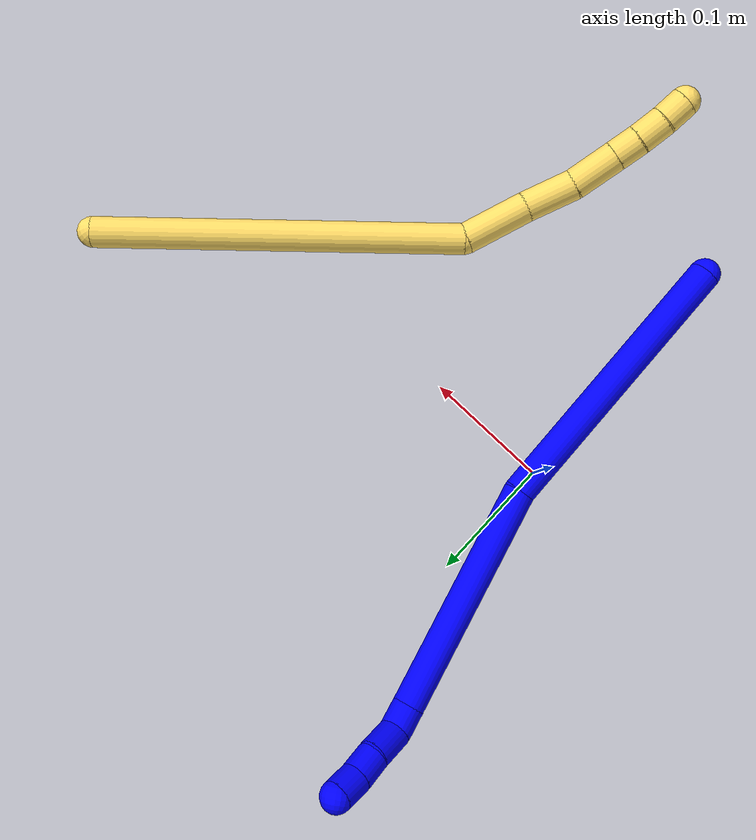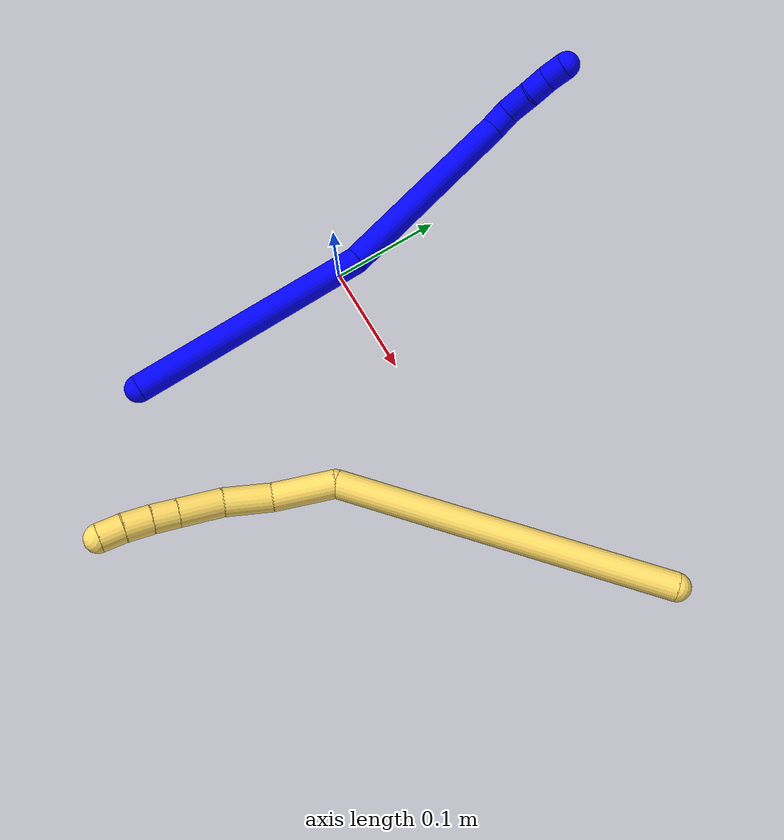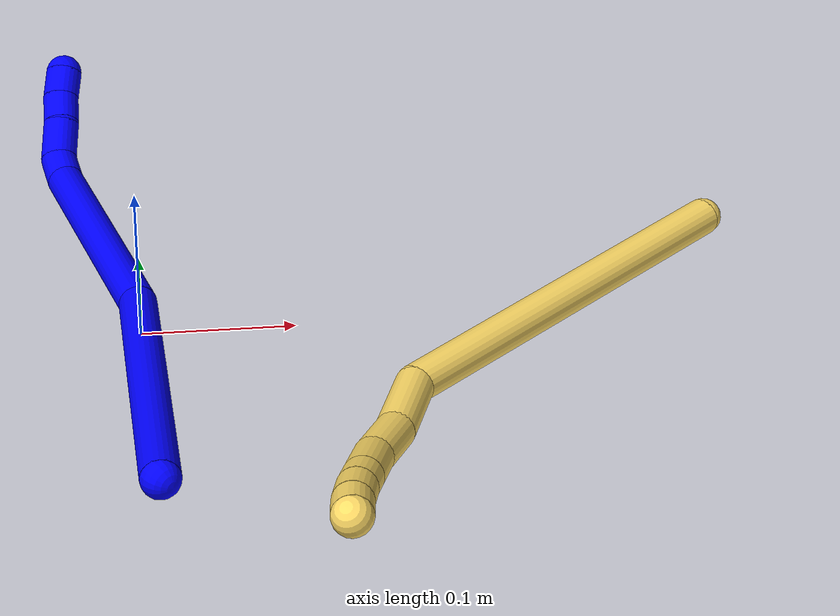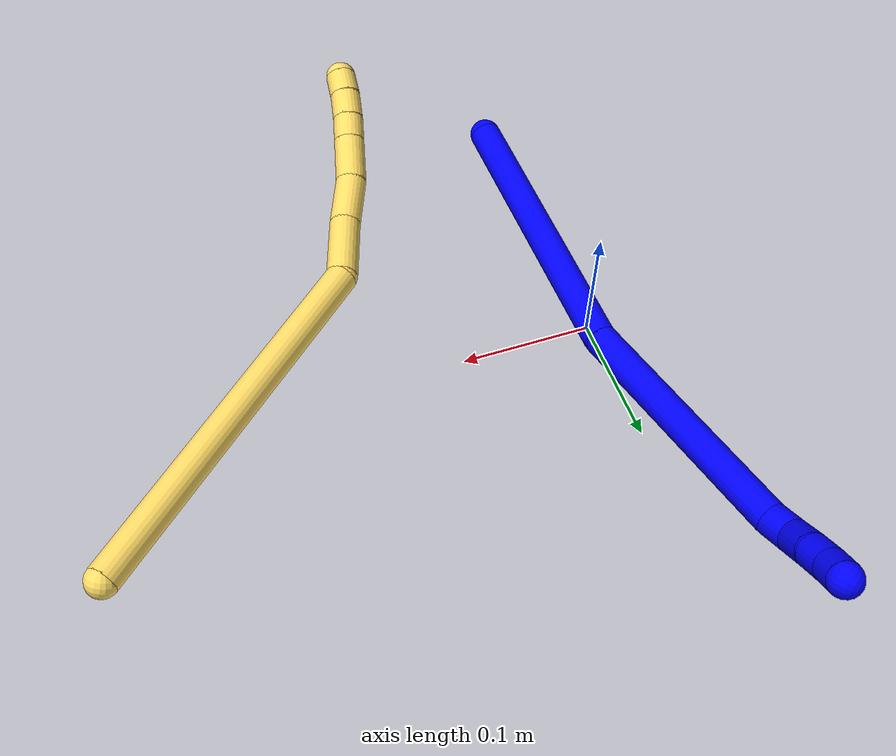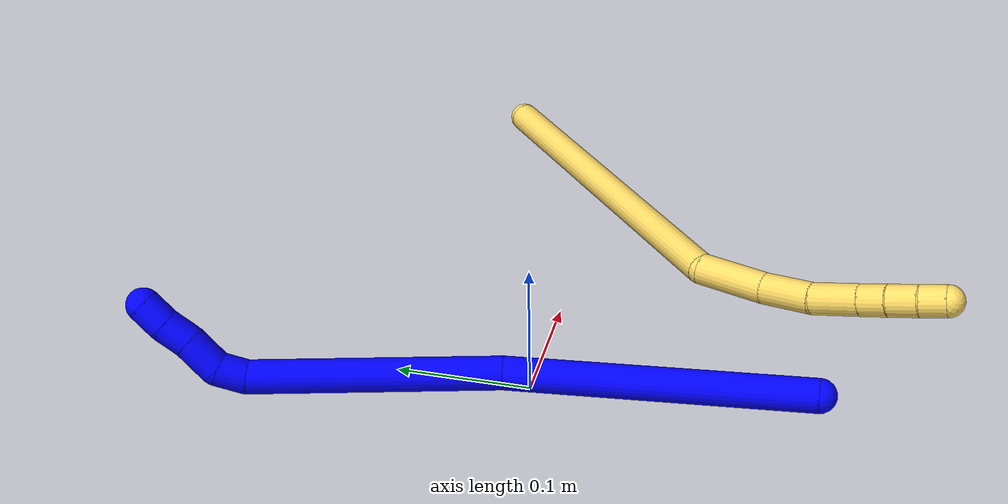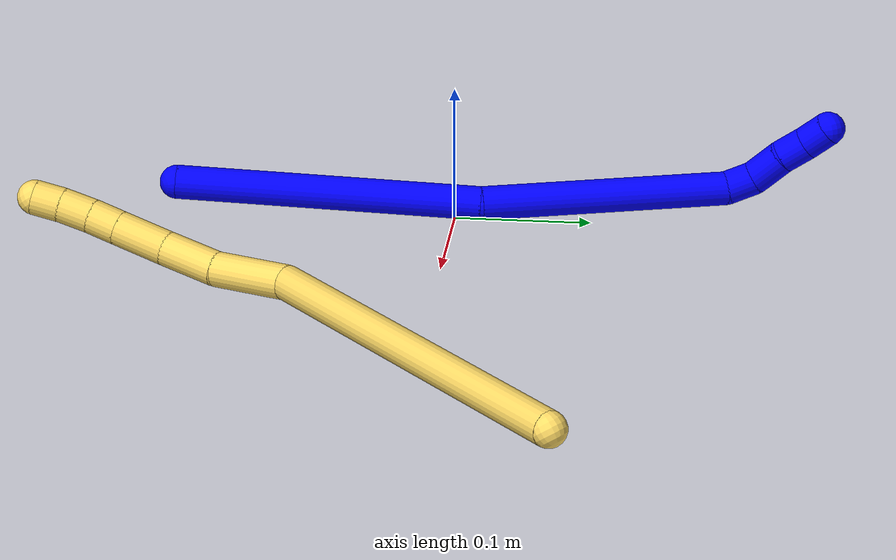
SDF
<sdf version="1.7">
 <world name="default">
  <model name="photoneo_s_sensor">
   <static>1</static>
   <pose>0 0 2 1.57079 1.57079 3.14159</pose>
   <link name="link">
    <inertial><mass>0.1</mass></inertial>
    <sensor name="sensor" type="depth">
     <update_rate>30</update_rate>
     <camera>
      <horizontal_fov>1.22</horizontal_fov>
      <image><width>1920</width><height>1200</height><format>B8G8R8</format></image>
      <clip><near>0.1</near><far>4</far></clip>
      <depth_camera><output>points</output></depth_camera>
     </camera>
     <plugin name="camera_plugin" filename="libgazebo_ros_depth_camera.so">
      <baseline>0.2</baseline>
      <alwaysOn>1</alwaysOn>
      <updateRate>0.0</updateRate>
      <cameraName>camera_ir</cameraName>
      <imageTopicName>/camera/color/image_raw</imageTopicName>
      <cameraInfoTopicName>/camera/color/camera_info</cameraInfoTopicName>
      <depthImageTopicName>/camera/depth/image_raw</depthImageTopicName>
      <depthImageCameraInfoTopicName>/camera/depth/camera_info</depthImageCameraInfoTopicName>
      <pointCloudTopicName>/camera/depth/points</pointCloudTopicName>
      <frameName>fr_optical</frameName>
      <pointCloudCutoff>0.1</pointCloudCutoff>
      <pointCloudCutoffMax>2.0</pointCloudCutoffMax>
      <distortionK1>0</distortionK1>
      <distortionK2>0</distortionK2>
      <distortionK3>0</distortionK3>
      <distortionT1>0</distortionT1>
      <distortionT2>0</distortionT2>
      <CxPrime>0</CxPrime>
      <Cx>0</Cx>
      <Cy>0</Cy>
      <focalLength>0</focalLength>
      <hackBaseline>0</hackBaseline>
     </plugin>
    </sensor>
   </link>
  </model>
  <model name="bin">
   <static>1</static>
   <link name="bottom">
    <collision name="collision-bottom">
     <pose>0 0 -0.01 0 -0 0</pose>
     <geometry><box><size>0.8 0.6 0.02</size></box></geometry>
     <surface>
      <friction><ode><mu>100</mu><mu2>100</mu2></ode></friction>
      <contact><collide_bitmask>65535</collide_bitmask></contact>
     </surface>
    </collision>
   </link>
   <link name="west_wall">
    <collision name="collision-west_wall">
     <pose>-0.41 0 0.1 0 -0 0</pose>
     <geometry><box><size>0.02 0.6 0.2</size></box></geometry>
     <surface>
      <friction><ode><mu>100</mu><mu2>100</mu2></ode></friction>
      <contact><collide_bitmask>65535</collide_bitmask></contact>
     </surface>
    </collision>
   </link>
   <link name="east_wall">
    <collision name="collision-east_wall">
     <pose>0.41 0 0.1 0 -0 0</pose>
     <geometry><box><size>0.02 0.6 0.2</size></box></geometry>
     <surface>
      <friction><ode><mu>100</mu><mu2>100</mu2></ode></friction>
      <contact><collide_bitmask>65535</collide_bitmask></contact>
     </surface>
    </collision>
   </link>
   <link name="south_wall">
    <collision name="collision-south_wall">
     <pose>0 -0.31 0.1 0 -0 0</pose>
     <geometry><box><size>0.8 0.02 0.2</size></box></geometry>
     <surface>
      <friction><ode><mu>100</mu><mu2>100</mu2></ode></friction>
      <contact><collide_bitmask>65535</collide_bitmask></contact>
     </surface>
    </collision>
   </link>
   <link name="north_wall">
    <collision name="collision-north_wall">
     <pose>0 0.31 0.1 0 -0 0</pose>
     <geometry><box><size>0.8 0.02 0.2</size></box></geometry>
     <surface>
      <friction><ode><mu>100</mu><mu2>100</mu2></ode></friction>
      <contact><collide_bitmask>65535</collide_bitmask></contact>
     </surface>
    </collision>
   </link>
  </model>
  <model name="1">
   <static>0</static>
   <link name="1">
    <collision name="collision-cylinder-e_1_1_4">
     <pose>-0.026391 0.054532 0.094767 -0.522164 -0.236842 0.063556</pose>
     <geometry><cylinder><radius>0.0125</radius><length>0.224953</length></cylinder></geometry>
     <surface>
      <friction><ode><mu>1.16</mu><mu2>1.16</mu2><slip1>0</slip1><slip2>0</slip2></ode></friction>
      <contact><ode><kp>1e+06</kp><kd>1</kd><max_vel>0</max_vel><min_depth>0.001</min_depth></ode></contact>
     </surface>
    </collision>
    <visual name="visual-cylinder-e_1_1_4">
     <pose>-0.026391 0.054532 0.094767 -0.522164 -0.236842 0.063556</pose>
     <geometry><cylinder><radius>0.0125</radius><length>0.224953</length></cylinder></geometry>
     <material><ambient>0 0 1 1</ambient></material>
    </visual>
    <collision name="collision-cylinder-e_2_4_5">
     <pose>-0.064778 0.137626 0.2763 -0.317999 -0.130583 0.020968</pose>
     <geometry><cylinder><radius>0.0125</radius><length>0.184263</length></cylinder></geometry>
     <surface>
      <friction><ode><mu>1.16</mu><mu2>1.16</mu2><slip1>0</slip1><slip2>0</slip2></ode></friction>
      <contact><ode><kp>1e+06</kp><kd>1</kd><max_vel>0</max_vel><min_depth>0.001</min_depth></ode></contact>
     </surface>
    </collision>
    <visual name="visual-cylinder-e_2_4_5">
     <pose>-0.064778 0.137626 0.2763 -0.317999 -0.130583 0.020968</pose>
     <geometry><cylinder><radius>0.0125</radius><length>0.184263</length></cylinder></geometry>
     <material><ambient>0 0 1 1</ambient></material>
    </visual>
    <collision name="collision-cylinder-e_3_5_6">
     <pose>-0.074774 0.170759 0.372784 -0.439804 0.18419 -0.04128</pose>
     <geometry><cylinder><radius>0.0125</radius><length>0.021848</length></cylinder></geometry>
     <surface>
      <friction><ode><mu>1.16</mu><mu2>1.16</mu2><slip1>0</slip1><slip2>0</slip2></ode></friction>
      <contact><ode><kp>1e+06</kp><kd>1</kd><max_vel>0</max_vel><min_depth>0.001</min_depth></ode></contact>
     </surface>
    </collision>
    <visual name="visual-cylinder-e_3_5_6">
     <pose>-0.074774 0.170759 0.372784 -0.439804 0.18419 -0.04128</pose>
     <geometry><cylinder><radius>0.0125</radius><length>0.021848</length></cylinder></geometry>
     <material><ambient>0 0 1 1</ambient></material>
    </visual>
    <collision name="collision-cylinder-e_4_6_7">
     <pose>-0.066135 0.184398 0.390501 -0.84784 0.502108 -0.230451</pose>
     <geometry><cylinder><radius>0.0125</radius><length>0.027586</length></cylinder></geometry>
     <surface>
      <friction><ode><mu>1.16</mu><mu2>1.16</mu2><slip1>0</slip1><slip2>0</slip2></ode></friction>
      <contact><ode><kp>1e+06</kp><kd>1</kd><max_vel>0</max_vel><min_depth>0.001</min_depth></ode></contact>
     </surface>
    </collision>
    <visual name="visual-cylinder-e_4_6_7">
     <pose>-0.066135 0.184398 0.390501 -0.84784 0.502108 -0.230451</pose>
     <geometry><cylinder><radius>0.0125</radius><length>0.027586</length></cylinder></geometry>
     <material><ambient>0 0 1 1</ambient></material>
    </visual>
    <collision name="collision-cylinder-e_5_7_8">
     <pose>-0.055645 0.199804 0.405866 -0.710684 0.377307 -0.141465</pose>
     <geometry><cylinder><radius>0.0125</radius><length>0.020909</length></cylinder></geometry>
     <surface>
      <friction><ode><mu>1.16</mu><mu2>1.16</mu2><slip1>0</slip1><slip2>0</slip2></ode></friction>
      <contact><ode><kp>1e+06</kp><kd>1</kd><max_vel>0</max_vel><min_depth>0.001</min_depth></ode></contact>
     </surface>
    </collision>
    <visual name="visual-cylinder-e_5_7_8">
     <pose>-0.055645 0.199804 0.405866 -0.710684 0.377307 -0.141465</pose>
     <geometry><cylinder><radius>0.0125</radius><length>0.020909</length></cylinder></geometry>
     <material><ambient>0 0 1 1</ambient></material>
    </visual>
    <collision name="collision-cylinder-e_6_8_2">
     <pose>-0.047425 0.213262 0.419125 -0.879225 0.441614 -0.210358</pose>
     <geometry><cylinder><radius>0.0125</radius><length>0.020441</length></cylinder></geometry>
     <surface>
      <friction><ode><mu>1.16</mu><mu2>1.16</mu2><slip1>0</slip1><slip2>0</slip2></ode></friction>
      <contact><ode><kp>1e+06</kp><kd>1</kd><max_vel>0</max_vel><min_depth>0.001</min_depth></ode></contact>
     </surface>
    </collision>
    <visual name="visual-cylinder-e_6_8_2">
     <pose>-0.047425 0.213262 0.419125 -0.879225 0.441614 -0.210358</pose>
     <geometry><cylinder><radius>0.0125</radius><length>0.020441</length></cylinder></geometry>
     <material><ambient>0 0 1 1</ambient></material>
    </visual>
    <collision name="collision-sphere-2">
     <pose>-0.043057 0.220379 0.425018 0 -0 0</pose>
     <geometry><sphere><radius>0.0125</radius></sphere></geometry>
     <surface>
      <friction><ode><mu>1.16</mu><mu2>1.16</mu2><slip1>0</slip1><slip2>0</slip2></ode></friction>
      <contact><ode><kp>1e+06</kp><kd>1</kd><max_vel>0</max_vel><min_depth>0.001</min_depth></ode></contact>
     </surface>
    </collision>
    <visual name="visual-sphere-2">
     <pose>-0.043057 0.220379 0.425018 0 -0 0</pose>
     <geometry><sphere><radius>0.0125</radius></sphere></geometry>
     <material><ambient>0 0 1 1</ambient></material>
    </visual>
    <collision name="collision-sphere-4">
     <pose>-0.052782 0.109065 0.189533 0 -0 0</pose>
     <geometry><sphere><radius>0.0125</radius></sphere></geometry>
     <surface>
      <friction><ode><mu>1.16</mu><mu2>1.16</mu2><slip1>0</slip1><slip2>0</slip2></ode></friction>
      <contact><ode><kp>1e+06</kp><kd>1</kd><max_vel>0</max_vel><min_depth>0.001</min_depth></ode></contact>
     </surface>
    </collision>
    <visual name="visual-sphere-4">
     <pose>-0.052782 0.109065 0.189533 0 -0 0</pose>
     <geometry><sphere><radius>0.0125</radius></sphere></geometry>
     <material><ambient>0 0 1 1</ambient></material>
    </visual>
    <collision name="collision-sphere-1">
     <geometry><sphere><radius>0.0125</radius></sphere></geometry>
     <surface>
      <friction><ode><mu>1.16</mu><mu2>1.16</mu2><slip1>0</slip1><slip2>0</slip2></ode></friction>
      <contact><ode><kp>1e+06</kp><kd>1</kd><max_vel>0</max_vel><min_depth>0.001</min_depth></ode></contact>
     </surface>
    </collision>
    <visual name="visual-sphere-1">
     <geometry><sphere><radius>0.0125</radius></sphere></geometry>
     <material><ambient>0 0 1 1</ambient></material>
    </visual>
    <collision name="collision-sphere-8">
     <pose>-0.051794 0.206145 0.413233 0 -0 0</pose>
     <geometry><sphere><radius>0.0125</radius></sphere></geometry>
     <surface>
      <friction><ode><mu>1.16</mu><mu2>1.16</mu2><slip1>0</slip1><slip2>0</slip2></ode></friction>
      <contact><ode><kp>1e+06</kp><kd>1</kd><max_vel>0</max_vel><min_depth>0.001</min_depth></ode></contact>
     </surface>
    </collision>
    <visual name="visual-sphere-8">
     <pose>-0.051794 0.206145 0.413233 0 -0 0</pose>
     <geometry><sphere><radius>0.0125</radius></sphere></geometry>
     <material><ambient>0 0 1 1</ambient></material>
    </visual>
    <collision name="collision-sphere-5">
     <pose>-0.076775 0.166187 0.363067 0 -0 0</pose>
     <geometry><sphere><radius>0.0125</radius></sphere></geometry>
     <surface>
      <friction><ode><mu>1.16</mu><mu2>1.16</mu2><slip1>0</slip1><slip2>0</slip2></ode></friction>
      <contact><ode><kp>1e+06</kp><kd>1</kd><max_vel>0</max_vel><min_depth>0.001</min_depth></ode></contact>
     </surface>
    </collision>
    <visual name="visual-sphere-5">
     <pose>-0.076775 0.166187 0.363067 0 -0 0</pose>
     <geometry><sphere><radius>0.0125</radius></sphere></geometry>
     <material><ambient>0 0 1 1</ambient></material>
    </visual>
    <collision name="collision-sphere-6">
     <pose>-0.072774 0.175332 0.382502 0 -0 0</pose>
     <geometry><sphere><radius>0.0125</radius></sphere></geometry>
     <surface>
      <friction><ode><mu>1.16</mu><mu2>1.16</mu2><slip1>0</slip1><slip2>0</slip2></ode></friction>
      <contact><ode><kp>1e+06</kp><kd>1</kd><max_vel>0</max_vel><min_depth>0.001</min_depth></ode></contact>
     </surface>
    </collision>
    <visual name="visual-sphere-6">
     <pose>-0.072774 0.175332 0.382502 0 -0 0</pose>
     <geometry><sphere><radius>0.0125</radius></sphere></geometry>
     <material><ambient>0 0 1 1</ambient></material>
    </visual>
    <collision name="collision-sphere-7">
     <pose>-0.059497 0.193464 0.3985 0 -0 0</pose>
     <geometry><sphere><radius>0.0125</radius></sphere></geometry>
     <surface>
      <friction><ode><mu>1.16</mu><mu2>1.16</mu2><slip1>0</slip1><slip2>0</slip2></ode></friction>
      <contact><ode><kp>1e+06</kp><kd>1</kd><max_vel>0</max_vel><min_depth>0.001</min_depth></ode></contact>
     </surface>
    </collision>
    <visual name="visual-sphere-7">
     <pose>-0.059497 0.193464 0.3985 0 -0 0</pose>
     <geometry><sphere><radius>0.0125</radius></sphere></geometry>
     <material><ambient>0 0 1 1</ambient></material>
    </visual>
    <inertial>
     <pose>-0.046928 0.109962 0.216401 0 -0 0</pose>
     <mass>0.5</mass>
     <inertia>
      <ixx>0.001525</ixx>
      <ixy>0</ixy>
      <ixz>0</ixz>
      <iyy>0.00143</iyy>
      <iyz>0</iyz>
      <izz>-0.000309</izz>
     </inertia>
    </inertial>
   </link>
   <pose>0.007684 -0.205149 0.023094 1.40076 -1.28523 -2.37758</pose>
  </model>
  <model name="5">
   <static>0</static>
   <link name="5">
    <collision name="collision-cylinder-e_1_1_4">
     <pose>-0.098016 -0.072987 -0.085645 2.43582 -0.71659 -1.58736</pose>
     <geometry><cylinder><radius>0.0125</radius><length>0.298459</length></cylinder></geometry>
     <surface>
      <friction><ode><mu>1.16</mu><mu2>1.16</mu2><slip1>0</slip1><slip2>0</slip2></ode></friction>
      <contact><ode><kp>1e+06</kp><kd>1</kd><max_vel>0</max_vel><min_depth>0.001</min_depth></ode></contact>
     </surface>
    </collision>
    <visual name="visual-cylinder-e_1_1_4">
     <pose>-0.098016 -0.072987 -0.085645 2.43582 -0.71659 -1.58736</pose>
     <geometry><cylinder><radius>0.0125</radius><length>0.298459</length></cylinder></geometry>
     <material><ambient>1 0.858824 0.4 1</ambient></material>
    </visual>
    <collision name="collision-cylinder-e_2_4_5">
     <pose>-0.21851 -0.146213 -0.187469 3.12687 -0.946848 -3.11285</pose>
     <geometry><cylinder><radius>0.0125</radius><length>0.055391</length></cylinder></geometry>
     <surface>
      <friction><ode><mu>1.16</mu><mu2>1.16</mu2><slip1>0</slip1><slip2>0</slip2></ode></friction>
      <contact><ode><kp>1e+06</kp><kd>1</kd><max_vel>0</max_vel><min_depth>0.001</min_depth></ode></contact>
     </surface>
    </collision>
    <visual name="visual-cylinder-e_2_4_5">
     <pose>-0.21851 -0.146213 -0.187469 3.12687 -0.946848 -3.11285</pose>
     <geometry><cylinder><radius>0.0125</radius><length>0.055391</length></cylinder></geometry>
     <material><ambient>1 0.858824 0.4 1</ambient></material>
    </visual>
    <collision name="collision-cylinder-e_3_5_6">
     <pose>-0.25562 -0.147745 -0.218641 3.05551 -0.771406 -2.93023</pose>
     <geometry><cylinder><radius>0.0125</radius><length>0.041981</length></cylinder></geometry>
     <surface>
      <friction><ode><mu>1.16</mu><mu2>1.16</mu2><slip1>0</slip1><slip2>0</slip2></ode></friction>
      <contact><ode><kp>1e+06</kp><kd>1</kd><max_vel>0</max_vel><min_depth>0.001</min_depth></ode></contact>
     </surface>
    </collision>
    <visual name="visual-cylinder-e_3_5_6">
     <pose>-0.25562 -0.147745 -0.218641 3.05551 -0.771406 -2.93023</pose>
     <geometry><cylinder><radius>0.0125</radius><length>0.041981</length></cylinder></geometry>
     <material><ambient>1 0.858824 0.4 1</ambient></material>
    </visual>
    <collision name="collision-cylinder-e_4_6_7">
     <pose>-0.282587 -0.146995 -0.248263 -3.00278 -0.69571 2.76274</pose>
     <geometry><cylinder><radius>0.0125</radius><length>0.038486</length></cylinder></geometry>
     <surface>
      <friction><ode><mu>1.16</mu><mu2>1.16</mu2><slip1>0</slip1><slip2>0</slip2></ode></friction>
      <contact><ode><kp>1e+06</kp><kd>1</kd><max_vel>0</max_vel><min_depth>0.001</min_depth></ode></contact>
     </surface>
    </collision>
    <visual name="visual-cylinder-e_4_6_7">
     <pose>-0.282587 -0.146995 -0.248263 -3.00278 -0.69571 2.76274</pose>
     <geometry><cylinder><radius>0.0125</radius><length>0.038486</length></cylinder></geometry>
     <material><ambient>1 0.858824 0.4 1</ambient></material>
    </visual>
    <collision name="collision-cylinder-e_5_7_8">
     <pose>-0.301741 -0.143758 -0.271088 -2.99702 -0.688916 2.74327</pose>
     <geometry><cylinder><radius>0.0125</radius><length>0.021459</length></cylinder></geometry>
     <surface>
      <friction><ode><mu>1.16</mu><mu2>1.16</mu2><slip1>0</slip1><slip2>0</slip2></ode></friction>
      <contact><ode><kp>1e+06</kp><kd>1</kd><max_vel>0</max_vel><min_depth>0.001</min_depth></ode></contact>
     </surface>
    </collision>
    <visual name="visual-cylinder-e_5_7_8">
     <pose>-0.301741 -0.143758 -0.271088 -2.99702 -0.688916 2.74327</pose>
     <geometry><cylinder><radius>0.0125</radius><length>0.021459</length></cylinder></geometry>
     <material><ambient>1 0.858824 0.4 1</ambient></material>
    </visual>
    <collision name="collision-cylinder-e_6_8_9">
     <pose>-0.316278 -0.140626 -0.28794 -2.92122 -0.715859 2.56642</pose>
     <geometry><cylinder><radius>0.0125</radius><length>0.023514</length></cylinder></geometry>
     <surface>
      <friction><ode><mu>1.16</mu><mu2>1.16</mu2><slip1>0</slip1><slip2>0</slip2></ode></friction>
      <contact><ode><kp>1e+06</kp><kd>1</kd><max_vel>0</max_vel><min_depth>0.001</min_depth></ode></contact>
     </surface>
    </collision>
    <visual name="visual-cylinder-e_6_8_9">
     <pose>-0.316278 -0.140626 -0.28794 -2.92122 -0.715859 2.56642</pose>
     <geometry><cylinder><radius>0.0125</radius><length>0.023514</length></cylinder></geometry>
     <material><ambient>1 0.858824 0.4 1</ambient></material>
    </visual>
    <collision name="collision-cylinder-e_7_9_2">
     <pose>-0.331125 -0.136184 -0.303675 -2.80174 -0.759734 2.32981</pose>
     <geometry><cylinder><radius>0.0125</radius><length>0.02071</length></cylinder></geometry>
     <surface>
      <friction><ode><mu>1.16</mu><mu2>1.16</mu2><slip1>0</slip1><slip2>0</slip2></ode></friction>
      <contact><ode><kp>1e+06</kp><kd>1</kd><max_vel>0</max_vel><min_depth>0.001</min_depth></ode></contact>
     </surface>
    </collision>
    <visual name="visual-cylinder-e_7_9_2">
     <pose>-0.331125 -0.136184 -0.303675 -2.80174 -0.759734 2.32981</pose>
     <geometry><cylinder><radius>0.0125</radius><length>0.02071</length></cylinder></geometry>
     <material><ambient>1 0.858824 0.4 1</ambient></material>
    </visual>
    <collision name="collision-sphere-2">
     <pose>-0.338257 -0.133681 -0.310753 0 -0 0</pose>
     <geometry><sphere><radius>0.0125</radius></sphere></geometry>
     <surface>
      <friction><ode><mu>1.16</mu><mu2>1.16</mu2><slip1>0</slip1><slip2>0</slip2></ode></friction>
      <contact><ode><kp>1e+06</kp><kd>1</kd><max_vel>0</max_vel><min_depth>0.001</min_depth></ode></contact>
     </surface>
    </collision>
    <visual name="visual-sphere-2">
     <pose>-0.338257 -0.133681 -0.310753 0 -0 0</pose>
     <geometry><sphere><radius>0.0125</radius></sphere></geometry>
     <material><ambient>1 0.858824 0.4 1</ambient></material>
    </visual>
    <collision name="collision-sphere-9">
     <pose>-0.323993 -0.138687 -0.296597 0 -0 0</pose>
     <geometry><sphere><radius>0.0125</radius></sphere></geometry>
     <surface>
      <friction><ode><mu>1.16</mu><mu2>1.16</mu2><slip1>0</slip1><slip2>0</slip2></ode></friction>
      <contact><ode><kp>1e+06</kp><kd>1</kd><max_vel>0</max_vel><min_depth>0.001</min_depth></ode></contact>
     </surface>
    </collision>
    <visual name="visual-sphere-9">
     <pose>-0.323993 -0.138687 -0.296597 0 -0 0</pose>
     <geometry><sphere><radius>0.0125</radius></sphere></geometry>
     <material><ambient>1 0.858824 0.4 1</ambient></material>
    </visual>
    <collision name="collision-sphere-4">
     <pose>-0.196033 -0.145975 -0.17129 0 -0 0</pose>
     <geometry><sphere><radius>0.0125</radius></sphere></geometry>
     <surface>
      <friction><ode><mu>1.16</mu><mu2>1.16</mu2><slip1>0</slip1><slip2>0</slip2></ode></friction>
      <contact><ode><kp>1e+06</kp><kd>1</kd><max_vel>0</max_vel><min_depth>0.001</min_depth></ode></contact>
     </surface>
    </collision>
    <visual name="visual-sphere-4">
     <pose>-0.196033 -0.145975 -0.17129 0 -0 0</pose>
     <geometry><sphere><radius>0.0125</radius></sphere></geometry>
     <material><ambient>1 0.858824 0.4 1</ambient></material>
    </visual>
    <collision name="collision-sphere-1">
     <geometry><sphere><radius>0.0125</radius></sphere></geometry>
     <surface>
      <friction><ode><mu>1.16</mu><mu2>1.16</mu2><slip1>0</slip1><slip2>0</slip2></ode></friction>
      <contact><ode><kp>1e+06</kp><kd>1</kd><max_vel>0</max_vel><min_depth>0.001</min_depth></ode></contact>
     </surface>
    </collision>
    <visual name="visual-sphere-1">
     <geometry><sphere><radius>0.0125</radius></sphere></geometry>
     <material><ambient>1 0.858824 0.4 1</ambient></material>
    </visual>
    <collision name="collision-sphere-8">
     <pose>-0.308562 -0.142565 -0.279284 0 -0 0</pose>
     <geometry><sphere><radius>0.0125</radius></sphere></geometry>
     <surface>
      <friction><ode><mu>1.16</mu><mu2>1.16</mu2><slip1>0</slip1><slip2>0</slip2></ode></friction>
      <contact><ode><kp>1e+06</kp><kd>1</kd><max_vel>0</max_vel><min_depth>0.001</min_depth></ode></contact>
     </surface>
    </collision>
    <visual name="visual-sphere-8">
     <pose>-0.308562 -0.142565 -0.279284 0 -0 0</pose>
     <geometry><sphere><radius>0.0125</radius></sphere></geometry>
     <material><ambient>1 0.858824 0.4 1</ambient></material>
    </visual>
    <collision name="collision-sphere-5">
     <pose>-0.240987 -0.146451 -0.203648 0 -0 0</pose>
     <geometry><sphere><radius>0.0125</radius></sphere></geometry>
     <surface>
      <friction><ode><mu>1.16</mu><mu2>1.16</mu2><slip1>0</slip1><slip2>0</slip2></ode></friction>
      <contact><ode><kp>1e+06</kp><kd>1</kd><max_vel>0</max_vel><min_depth>0.001</min_depth></ode></contact>
     </surface>
    </collision>
    <visual name="visual-sphere-5">
     <pose>-0.240987 -0.146451 -0.203648 0 -0 0</pose>
     <geometry><sphere><radius>0.0125</radius></sphere></geometry>
     <material><ambient>1 0.858824 0.4 1</ambient></material>
    </visual>
    <collision name="collision-sphere-6">
     <pose>-0.270254 -0.149039 -0.233634 0 -0 0</pose>
     <geometry><sphere><radius>0.0125</radius></sphere></geometry>
     <surface>
      <friction><ode><mu>1.16</mu><mu2>1.16</mu2><slip1>0</slip1><slip2>0</slip2></ode></friction>
      <contact><ode><kp>1e+06</kp><kd>1</kd><max_vel>0</max_vel><min_depth>0.001</min_depth></ode></contact>
     </surface>
    </collision>
    <visual name="visual-sphere-6">
     <pose>-0.270254 -0.149039 -0.233634 0 -0 0</pose>
     <geometry><sphere><radius>0.0125</radius></sphere></geometry>
     <material><ambient>1 0.858824 0.4 1</ambient></material>
    </visual>
    <collision name="collision-sphere-7">
     <pose>-0.294921 -0.144951 -0.262892 0 -0 0</pose>
     <geometry><sphere><radius>0.0125</radius></sphere></geometry>
     <surface>
      <friction><ode><mu>1.16</mu><mu2>1.16</mu2><slip1>0</slip1><slip2>0</slip2></ode></friction>
      <contact><ode><kp>1e+06</kp><kd>1</kd><max_vel>0</max_vel><min_depth>0.001</min_depth></ode></contact>
     </surface>
    </collision>
    <visual name="visual-sphere-7">
     <pose>-0.294921 -0.144951 -0.262892 0 -0 0</pose>
     <geometry><sphere><radius>0.0125</radius></sphere></geometry>
     <material><ambient>1 0.858824 0.4 1</ambient></material>
    </visual>
    <inertial>
     <pose>-0.167468 -0.101909 -0.147112 0 -0 0</pose>
     <mass>0.5</mass>
     <inertia>
      <ixx>-0.001754</ixx>
      <ixy>0</ixy>
      <ixz>0</ixz>
      <iyy>-0.000676</iyy>
      <iyz>0</iyz>
      <izz>0.002553</izz>
     </inertia>
    </inertial>
   </link>
   <pose>0.388505 0.099468 0.012474 2.91282 -0.598621 1.38352</pose>
  </model>
 </world>
</sdf>
